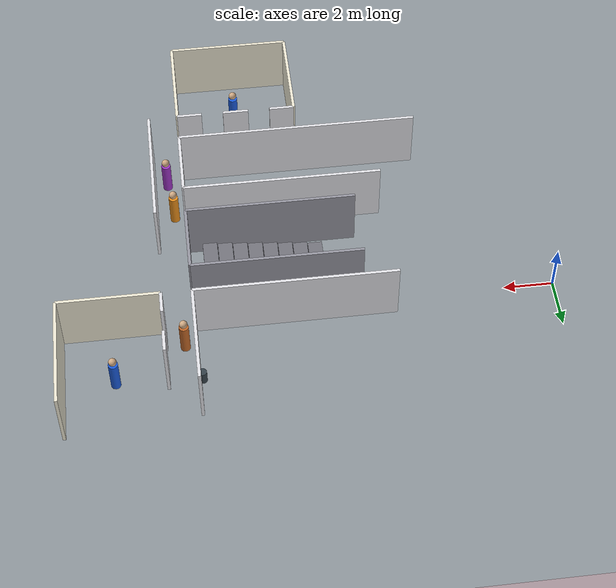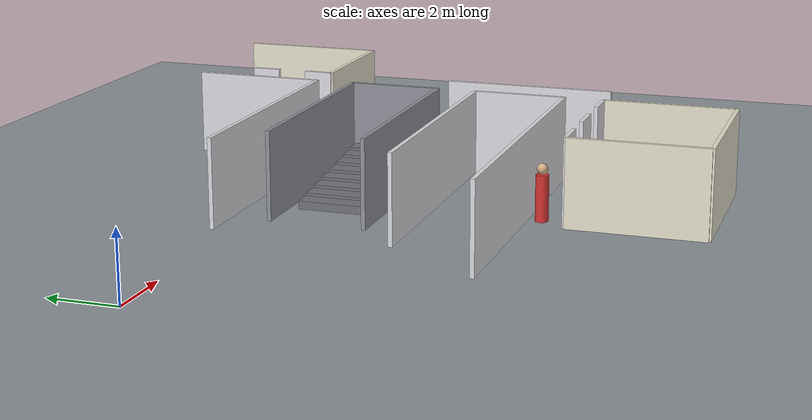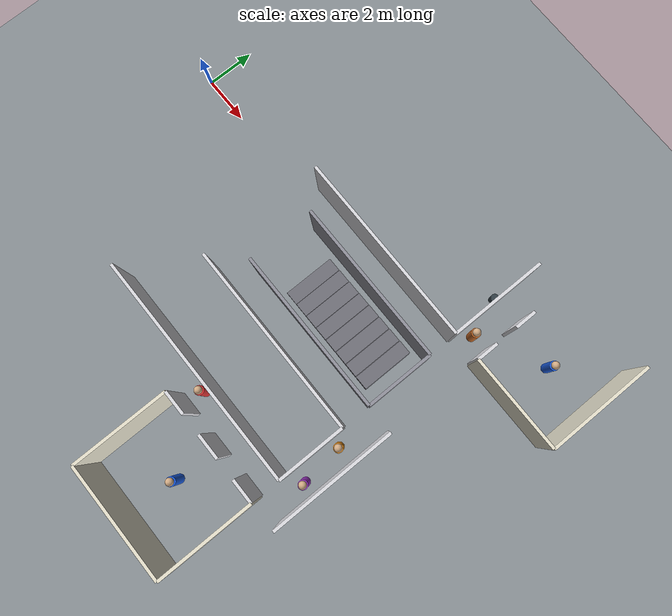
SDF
<sdf version="1.9">
 <world name="school_arena">
  <model name="ground">
   <static>true</static>
   <link name="link">
    <collision name="collision">
     <geometry><plane><normal>0 0 1</normal><size>80 80</size></plane></geometry>
    </collision>
    <visual name="visual">
     <geometry><plane><normal>0 0 1</normal><size>80 80</size></plane></geometry>
     <material><ambient>0.55 0.58 0.60 1</ambient><diffuse>0.55 0.58 0.60 1</diffuse></material>
    </visual>
   </link>
  </model>
  <model name="classroom_05_east">
   <static>true</static>
   <pose>9.5000 -10.6000 1.3000 0 0 0</pose>
   <link name="link">
    <collision name="collision"><geometry><box><size>0.1200 4.0000 2.6000</size></box></geometry></collision>
    <visual name="visual">
     <geometry><box><size>0.1200 4.0000 2.6000</size></box></geometry>
     <material><ambient>0.92 0.90 0.82 1</ambient><diffuse>0.92 0.90 0.82 1</diffuse></material>
    </visual>
   </link>
  </model>
  <model name="classroom_06_south">
   <static>true</static>
   <pose>11.9500 -12.6000 1.3000 0 0 0</pose>
   <link name="link">
    <collision name="collision"><geometry><box><size>4.9000 0.1200 2.6000</size></box></geometry></collision>
    <visual name="visual">
     <geometry><box><size>4.9000 0.1200 2.6000</size></box></geometry>
     <material><ambient>0.92 0.90 0.82 1</ambient><diffuse>0.92 0.90 0.82 1</diffuse></material>
    </visual>
   </link>
  </model>
  <model name="classroom_06_west">
   <static>true</static>
   <pose>9.5000 -10.6000 1.3000 0 0 0</pose>
   <link name="link">
    <collision name="collision"><geometry><box><size>0.1200 4.0000 2.6000</size></box></geometry></collision>
    <visual name="visual">
     <geometry><box><size>0.1200 4.0000 2.6000</size></box></geometry>
     <material><ambient>0.92 0.90 0.82 1</ambient><diffuse>0.92 0.90 0.82 1</diffuse></material>
    </visual>
   </link>
  </model>
  <model name="classroom_06_east">
   <static>true</static>
   <pose>14.4000 -10.6000 1.3000 0 0 0</pose>
   <link name="link">
    <collision name="collision"><geometry><box><size>0.1200 4.0000 2.6000</size></box></geometry></collision>
    <visual name="visual">
     <geometry><box><size>0.1200 4.0000 2.6000</size></box></geometry>
     <material><ambient>0.92 0.90 0.82 1</ambient><diffuse>0.92 0.90 0.82 1</diffuse></material>
    </visual>
   </link>
  </model>
  <model name="classroom_06_front_0">
   <static>true</static>
   <pose>10.0100 -8.6000 1.3000 0 0 0</pose>
   <link name="link">
    <collision name="collision"><geometry><box><size>1.0200 0.1200 2.6000</size></box></geometry></collision>
    <visual name="visual">
     <geometry><box><size>1.0200 0.1200 2.6000</size></box></geometry>
     <material><ambient>0.88 0.88 0.90 1</ambient><diffuse>0.88 0.88 0.90 1</diffuse></material>
    </visual>
   </link>
  </model>
  <model name="classroom_06_front_1">
   <static>true</static>
   <pose>11.9500 -8.6000 1.3000 0 0 0</pose>
   <link name="link">
    <collision name="collision"><geometry><box><size>1.0600 0.1200 2.6000</size></box></geometry></collision>
    <visual name="visual">
     <geometry><box><size>1.0600 0.1200 2.6000</size></box></geometry>
     <material><ambient>0.88 0.88 0.90 1</ambient><diffuse>0.88 0.88 0.90 1</diffuse></material>
    </visual>
   </link>
  </model>
  <model name="classroom_06_front_2">
   <static>true</static>
   <pose>13.8900 -8.6000 1.3000 0 0 0</pose>
   <link name="link">
    <collision name="collision"><geometry><box><size>1.0200 0.1200 2.6000</size></box></geometry></collision>
    <visual name="visual">
     <geometry><box><size>1.0200 0.1200 2.6000</size></box></geometry>
     <material><ambient>0.88 0.88 0.90 1</ambient><diffuse>0.88 0.88 0.90 1</diffuse></material>
    </visual>
   </link>
  </model>
  <model name="classroom_11_south">
   <static>true</static>
   <pose>17.6000 0.6000 1.3000 0 0 0</pose>
   <link name="link">
    <collision name="collision"><geometry><box><size>4.0000 0.1200 2.6000</size></box></geometry></collision>
    <visual name="visual">
     <geometry><box><size>4.0000 0.1200 2.6000</size></box></geometry>
     <material><ambient>0.92 0.90 0.82 1</ambient><diffuse>0.92 0.90 0.82 1</diffuse></material>
    </visual>
   </link>
  </model>
  <model name="classroom_11_east">
   <static>true</static>
   <pose>19.6000 2.8333 1.3000 0 0 0</pose>
   <link name="link">
    <collision name="collision"><geometry><box><size>0.1200 4.4667 2.6000</size></box></geometry></collision>
    <visual name="visual">
     <geometry><box><size>0.1200 4.4667 2.6000</size></box></geometry>
     <material><ambient>0.92 0.90 0.82 1</ambient><diffuse>0.92 0.90 0.82 1</diffuse></material>
    </visual>
   </link>
  </model>
  <model name="classroom_11_front_0">
   <static>true</static>
   <pose>15.6000 1.0450 1.3000 0 0 0</pose>
   <link name="link">
    <collision name="collision"><geometry><box><size>0.1200 0.8900 2.6000</size></box></geometry></collision>
    <visual name="visual">
     <geometry><box><size>0.1200 0.8900 2.6000</size></box></geometry>
     <material><ambient>0.88 0.88 0.90 1</ambient><diffuse>0.88 0.88 0.90 1</diffuse></material>
    </visual>
   </link>
  </model>
  <model name="classroom_11_front_1">
   <static>true</static>
   <pose>15.6000 2.8333 1.3000 0 0 0</pose>
   <link name="link">
    <collision name="collision"><geometry><box><size>0.1200 0.8867 2.6000</size></box></geometry></collision>
    <visual name="visual">
     <geometry><box><size>0.1200 0.8867 2.6000</size></box></geometry>
     <material><ambient>0.88 0.88 0.90 1</ambient><diffuse>0.88 0.88 0.90 1</diffuse></material>
    </visual>
   </link>
  </model>
  <model name="corridor_A_north_filler">
   <static>true</static>
   <pose>9.5000 -7.4000 1.3000 0 0 0</pose>
   <link name="link">
    <collision name="collision"><geometry><box><size>9.8000 0.1200 2.6000</size></box></geometry></collision>
    <visual name="visual">
     <geometry><box><size>9.8000 0.1200 2.6000</size></box></geometry>
     <material><ambient>0.88 0.88 0.90 1</ambient><diffuse>0.88 0.88 0.90 1</diffuse></material>
    </visual>
   </link>
  </model>
  <model name="corridor_B_outer_east">
   <static>true</static>
   <pose>15.6000 -6.0000 1.3000 0 0 0</pose>
   <link name="link">
    <collision name="collision"><geometry><box><size>0.1200 5.2000 2.6000</size></box></geometry></collision>
    <visual name="visual">
     <geometry><box><size>0.1200 5.2000 2.6000</size></box></geometry>
     <material><ambient>0.88 0.88 0.90 1</ambient><diffuse>0.88 0.88 0.90 1</diffuse></material>
    </visual>
   </link>
  </model>
  <model name="corridor_B_inner_west_lower">
   <static>true</static>
   <pose>14.4000 -6.0000 1.3000 0 0 0</pose>
   <link name="link">
    <collision name="collision"><geometry><box><size>0.1200 2.8000 2.6000</size></box></geometry></collision>
    <visual name="visual">
     <geometry><box><size>0.1200 2.8000 2.6000</size></box></geometry>
     <material><ambient>0.88 0.88 0.90 1</ambient><diffuse>0.88 0.88 0.90 1</diffuse></material>
    </visual>
   </link>
  </model>
  <model name="corridor_C_outer_south">
   <static>true</static>
   <pose>10.4000 -4.6000 1.3000 0 0 0</pose>
   <link name="link">
    <collision name="collision"><geometry><box><size>8.0000 0.1200 2.6000</size></box></geometry></collision>
    <visual name="visual">
     <geometry><box><size>8.0000 0.1200 2.6000</size></box></geometry>
     <material><ambient>0.88 0.88 0.90 1</ambient><diffuse>0.88 0.88 0.90 1</diffuse></material>
    </visual>
   </link>
  </model>
  <model name="corridor_E_outer_north">
   <static>true</static>
   <pose>10.4000 0.6000 1.3000 0 0 0</pose>
   <link name="link">
    <collision name="collision"><geometry><box><size>8.0000 0.1200 2.6000</size></box></geometry></collision>
    <visual name="visual">
     <geometry><box><size>8.0000 0.1200 2.6000</size></box></geometry>
     <material><ambient>0.88 0.88 0.90 1</ambient><diffuse>0.88 0.88 0.90 1</diffuse></material>
    </visual>
   </link>
  </model>
  <model name="corridor_F_west_lower">
   <static>true</static>
   <pose>14.4000 2.6000 1.3000 0 0 0</pose>
   <link name="link">
    <collision name="collision"><geometry><box><size>0.1200 4.0000 2.6000</size></box></geometry></collision>
    <visual name="visual">
     <geometry><box><size>0.1200 4.0000 2.6000</size></box></geometry>
     <material><ambient>0.88 0.88 0.90 1</ambient><diffuse>0.88 0.88 0.90 1</diffuse></material>
    </visual>
   </link>
  </model>
  <model name="stairs_south_wall">
   <static>true</static>
   <pose>11.0000 -3.4000 1.3000 0 0 0</pose>
   <link name="link">
    <collision name="collision"><geometry><box><size>6.8000 0.1200 2.6000</size></box></geometry></collision>
    <visual name="visual">
     <geometry><box><size>6.8000 0.1200 2.6000</size></box></geometry>
     <material><ambient>0.58 0.58 0.62 1</ambient><diffuse>0.58 0.58 0.62 1</diffuse></material>
    </visual>
   </link>
  </model>
  <model name="stairs_north_wall">
   <static>true</static>
   <pose>11.0000 -0.6000 1.3000 0 0 0</pose>
   <link name="link">
    <collision name="collision"><geometry><box><size>6.8000 0.1200 2.6000</size></box></geometry></collision>
    <visual name="visual">
     <geometry><box><size>6.8000 0.1200 2.6000</size></box></geometry>
     <material><ambient>0.58 0.58 0.62 1</ambient><diffuse>0.58 0.58 0.62 1</diffuse></material>
    </visual>
   </link>
  </model>
  <model name="stairs_east_wall">
   <static>true</static>
   <pose>14.4000 -2.0000 1.3000 0 0 0</pose>
   <link name="link">
    <collision name="collision"><geometry><box><size>0.1200 2.8000 2.6000</size></box></geometry></collision>
    <visual name="visual">
     <geometry><box><size>0.1200 2.8000 2.6000</size></box></geometry>
     <material><ambient>0.58 0.58 0.62 1</ambient><diffuse>0.58 0.58 0.62 1</diffuse></material>
    </visual>
   </link>
  </model>
  <model name="stair_step_03">
   <static>true</static>
   <pose>9.2700 -2.0000 0.1200 0 0 0</pose>
   <link name="link">
    <collision name="collision"><geometry><box><size>0.5800 2.1500 0.2400</size></box></geometry></collision>
    <visual name="visual">
     <geometry><box><size>0.5800 2.1500 0.2400</size></box></geometry>
     <material><ambient>0.45 0.45 0.48 1</ambient><diffuse>0.45 0.45 0.48 1</diffuse></material>
    </visual>
   </link>
  </model>
  <model name="stair_step_04">
   <static>true</static>
   <pose>9.8800 -2.0000 0.1600 0 0 0</pose>
   <link name="link">
    <collision name="collision"><geometry><box><size>0.5800 2.1500 0.3200</size></box></geometry></collision>
    <visual name="visual">
     <geometry><box><size>0.5800 2.1500 0.3200</size></box></geometry>
     <material><ambient>0.45 0.45 0.48 1</ambient><diffuse>0.45 0.45 0.48 1</diffuse></material>
    </visual>
   </link>
  </model>
  <model name="stair_step_05">
   <static>true</static>
   <pose>10.4900 -2.0000 0.2000 0 0 0</pose>
   <link name="link">
    <collision name="collision"><geometry><box><size>0.5800 2.1500 0.4000</size></box></geometry></collision>
    <visual name="visual">
     <geometry><box><size>0.5800 2.1500 0.4000</size></box></geometry>
     <material><ambient>0.45 0.45 0.48 1</ambient><diffuse>0.45 0.45 0.48 1</diffuse></material>
    </visual>
   </link>
  </model>
  <model name="stair_step_06">
   <static>true</static>
   <pose>11.1000 -2.0000 0.2400 0 0 0</pose>
   <link name="link">
    <collision name="collision"><geometry><box><size>0.5800 2.1500 0.4800</size></box></geometry></collision>
    <visual name="visual">
     <geometry><box><size>0.5800 2.1500 0.4800</size></box></geometry>
     <material><ambient>0.45 0.45 0.48 1</ambient><diffuse>0.45 0.45 0.48 1</diffuse></material>
    </visual>
   </link>
  </model>
  <model name="stair_step_07">
   <static>true</static>
   <pose>11.7100 -2.0000 0.2800 0 0 0</pose>
   <link name="link">
    <collision name="collision"><geometry><box><size>0.5800 2.1500 0.5600</size></box></geometry></collision>
    <visual name="visual">
     <geometry><box><size>0.5800 2.1500 0.5600</size></box></geometry>
     <material><ambient>0.45 0.45 0.48 1</ambient><diffuse>0.45 0.45 0.48 1</diffuse></material>
    </visual>
   </link>
  </model>
  <model name="stair_step_08">
   <static>true</static>
   <pose>12.3200 -2.0000 0.3200 0 0 0</pose>
   <link name="link">
    <collision name="collision"><geometry><box><size>0.5800 2.1500 0.6400</size></box></geometry></collision>
    <visual name="visual">
     <geometry><box><size>0.5800 2.1500 0.6400</size></box></geometry>
     <material><ambient>0.45 0.45 0.48 1</ambient><diffuse>0.45 0.45 0.48 1</diffuse></material>
    </visual>
   </link>
  </model>
  <model name="stair_step_09">
   <static>true</static>
   <pose>12.9300 -2.0000 0.3600 0 0 0</pose>
   <link name="link">
    <collision name="collision"><geometry><box><size>0.5800 2.1500 0.7200</size></box></geometry></collision>
    <visual name="visual">
     <geometry><box><size>0.5800 2.1500 0.7200</size></box></geometry>
     <material><ambient>0.45 0.45 0.48 1</ambient><diffuse>0.45 0.45 0.48 1</diffuse></material>
    </visual>
   </link>
  </model>
  <model name="stair_step_10">
   <static>true</static>
   <pose>13.5400 -2.0000 0.4000 0 0 0</pose>
   <link name="link">
    <collision name="collision"><geometry><box><size>0.5800 2.1500 0.8000</size></box></geometry></collision>
    <visual name="visual">
     <geometry><box><size>0.5800 2.1500 0.8000</size></box></geometry>
     <material><ambient>0.45 0.45 0.48 1</ambient><diffuse>0.45 0.45 0.48 1</diffuse></material>
    </visual>
   </link>
  </model>
  <model name="trash_bin_01">
   <static>true</static>
   <pose>14.2800 3.0000 0.2750 0.0000 0.0000 0.0000</pose>
   <link name="link">
    <collision name="collision">
     <geometry><cylinder><radius>0.1600</radius><length>0.5500</length></cylinder></geometry>
    </collision>
    <visual name="visual">
     <geometry><cylinder><radius>0.1600</radius><length>0.5500</length></cylinder></geometry>
     <material><ambient>0.20 0.25 0.28 1</ambient><diffuse>0.20 0.25 0.28 1</diffuse></material>
    </visual>
   </link>
  </model>
  <model name="student_opposite_A">
   <static>false</static>
   <pose>10.000 -7.850 0.000 0 0 3.14159</pose>
   <link name="base_link">
    <kinematic>true</kinematic>
    <gravity>false</gravity>
    <inertial>
     <mass>8.0</mass>
     <inertia><ixx>12.0</ixx><ixy>0</ixy><ixz>0</ixz><iyy>12.0</iyy><iyz>0</iyz><izz>0.45</izz></inertia>
    </inertial>
    <visual name="body">
     <geometry><cylinder><radius>0.19</radius><length>1.35</length></cylinder></geometry>
     <pose>0 0 0.675 0 0 0</pose>
     <material><ambient>0.85 0.20 0.20 1</ambient><diffuse>0.85 0.20 0.20 1</diffuse></material>
    </visual>
    <visual name="head">
     <pose>0 0 1.510 0 0 0</pose>
     <geometry><sphere><radius>0.16</radius></sphere></geometry>
     <material><ambient>0.82 0.67 0.52 1</ambient><diffuse>0.82 0.67 0.52 1</diffuse></material>
    </visual>
   </link>
  </model>
  <model name="student_corner_B">
   <static>false</static>
   <pose>15.050 -7.000 0.000 0 0 1.5708</pose>
   <link name="base_link">
    <kinematic>true</kinematic>
    <gravity>false</gravity>
    <inertial>
     <mass>8.0</mass>
     <inertia><ixx>12.0</ixx><ixy>0</ixy><ixz>0</ixz><iyy>12.0</iyy><iyz>0</iyz><izz>0.45</izz></inertia>
    </inertial>
    <visual name="body">
     <geometry><cylinder><radius>0.19</radius><length>1.35</length></cylinder></geometry>
     <pose>0 0 0.675 0 0 0</pose>
     <material><ambient>0.60 0.20 0.75 1</ambient><diffuse>0.60 0.20 0.75 1</diffuse></material>
    </visual>
    <visual name="head">
     <pose>0 0 1.510 0 0 0</pose>
     <geometry><sphere><radius>0.16</radius></sphere></geometry>
     <material><ambient>0.82 0.67 0.52 1</ambient><diffuse>0.82 0.67 0.52 1</diffuse></material>
    </visual>
   </link>
  </model>
  <model name="student_stair_loop">
   <static>false</static>
   <pose>14.850 -5.200 0.000 0 0 1.5708</pose>
   <link name="base_link">
    <kinematic>true</kinematic>
    <gravity>false</gravity>
    <inertial>
     <mass>8.0</mass>
     <inertia><ixx>12.0</ixx><ixy>0</ixy><ixz>0</ixz><iyy>12.0</iyy><iyz>0</iyz><izz>0.45</izz></inertia>
    </inertial>
    <visual name="body">
     <geometry><cylinder><radius>0.19</radius><length>1.35</length></cylinder></geometry>
     <pose>0 0 0.675 0 0 0</pose>
     <material><ambient>0.90 0.55 0.10 1</ambient><diffuse>0.90 0.55 0.10 1</diffuse></material>
    </visual>
    <visual name="head">
     <pose>0 0 1.510 0 0 0</pose>
     <geometry><sphere><radius>0.16</radius></sphere></geometry>
     <material><ambient>0.82 0.67 0.52 1</ambient><diffuse>0.82 0.67 0.52 1</diffuse></material>
    </visual>
   </link>
  </model>
  <model name="student_vertical_up">
   <static>false</static>
   <pose>14.850 1.400 0.000 0 0 1.5708</pose>
   <link name="base_link">
    <kinematic>true</kinematic>
    <gravity>false</gravity>
    <inertial>
     <mass>8.0</mass>
     <inertia><ixx>12.0</ixx><ixy>0</ixy><ixz>0</ixz><iyy>12.0</iyy><iyz>0</iyz><izz>0.45</izz></inertia>
    </inertial>
    <visual name="body">
     <geometry><cylinder><radius>0.19</radius><length>1.35</length></cylinder></geometry>
     <pose>0 0 0.675 0 0 0</pose>
     <material><ambient>0.75 0.40 0.15 1</ambient><diffuse>0.75 0.40 0.15 1</diffuse></material>
    </visual>
    <visual name="head">
     <pose>0 0 1.510 0 0 0</pose>
     <geometry><sphere><radius>0.16</radius></sphere></geometry>
     <material><ambient>0.82 0.67 0.52 1</ambient><diffuse>0.82 0.67 0.52 1</diffuse></material>
    </visual>
   </link>
  </model>
  <model name="background_agent_3">
   <static>false</static>
   <pose>11.95000 -10.60000 0.000 0 0 2.093735</pose>
   <link name="base_link">
    <kinematic>true</kinematic>
    <gravity>false</gravity>
    <inertial>
     <mass>8.0</mass>
     <inertia><ixx>12.0</ixx><ixy>0</ixy><ixz>0</ixz><iyy>12.0</iyy><iyz>0</iyz><izz>0.45</izz></inertia>
    </inertial>
    <visual name="body">
     <geometry><cylinder><radius>0.19</radius><length>1.35</length></cylinder></geometry>
     <pose>0 0 0.675 0 0 0</pose>
     <material><ambient>0.10 0.35 0.85 1</ambient><diffuse>0.10 0.35 0.85 1</diffuse></material>
    </visual>
    <visual name="head">
     <pose>0 0 1.510 0 0 0</pose>
     <geometry><sphere><radius>0.16</radius></sphere></geometry>
     <material><ambient>0.82 0.67 0.52 1</ambient><diffuse>0.82 0.67 0.52 1</diffuse></material>
    </visual>
   </link>
  </model>
  <model name="background_agent_4">
   <static>false</static>
   <pose>17.60000 2.83330 0.000 0 0 -2.657777</pose>
   <link name="base_link">
    <kinematic>true</kinematic>
    <gravity>false</gravity>
    <inertial>
     <mass>8.0</mass>
     <inertia><ixx>12.0</ixx><ixy>0</ixy><ixz>0</ixz><iyy>12.0</iyy><iyz>0</iyz><izz>0.45</izz></inertia>
    </inertial>
    <visual name="body">
     <geometry><cylinder><radius>0.19</radius><length>1.35</length></cylinder></geometry>
     <pose>0 0 0.675 0 0 0</pose>
     <material><ambient>0.10 0.35 0.85 1</ambient><diffuse>0.10 0.35 0.85 1</diffuse></material>
    </visual>
    <visual name="head">
     <pose>0 0 1.510 0 0 0</pose>
     <geometry><sphere><radius>0.16</radius></sphere></geometry>
     <material><ambient>0.82 0.67 0.52 1</ambient><diffuse>0.82 0.67 0.52 1</diffuse></material>
    </visual>
   </link>
  </model>
 </world>
</sdf>
